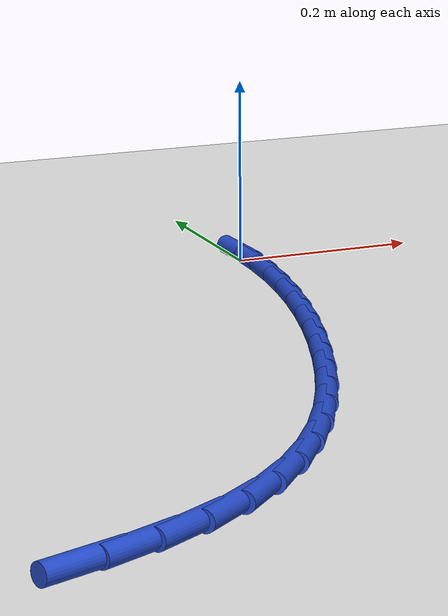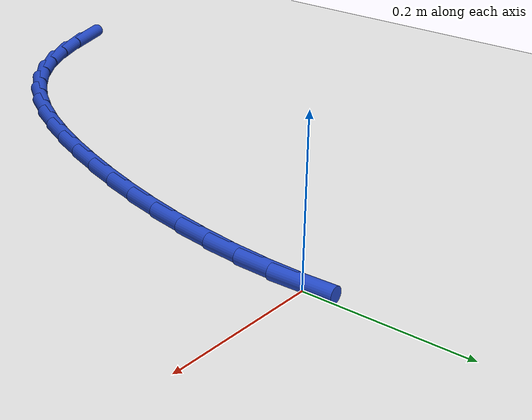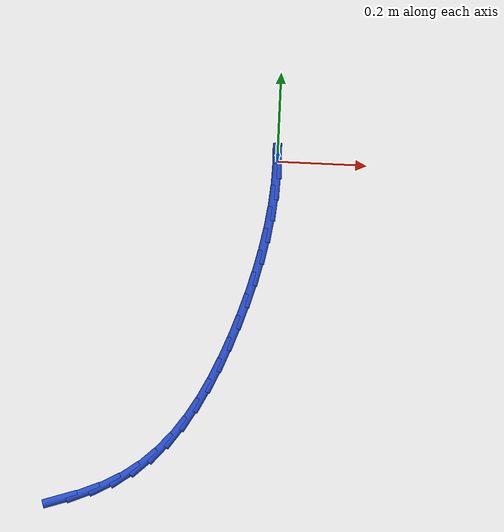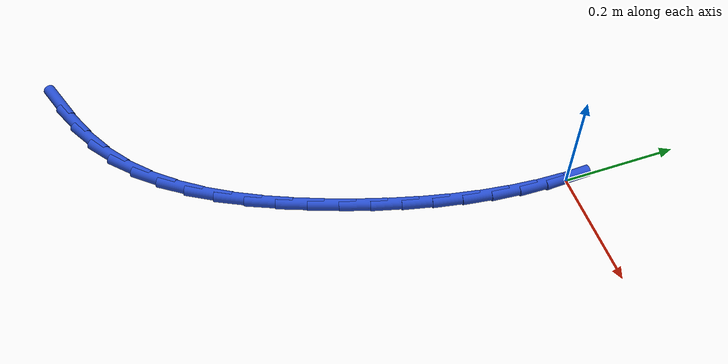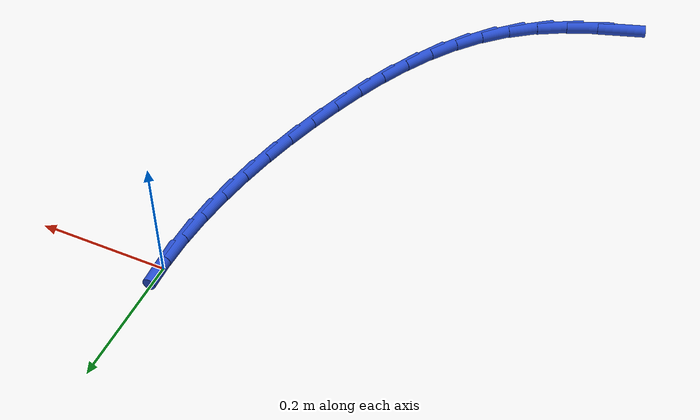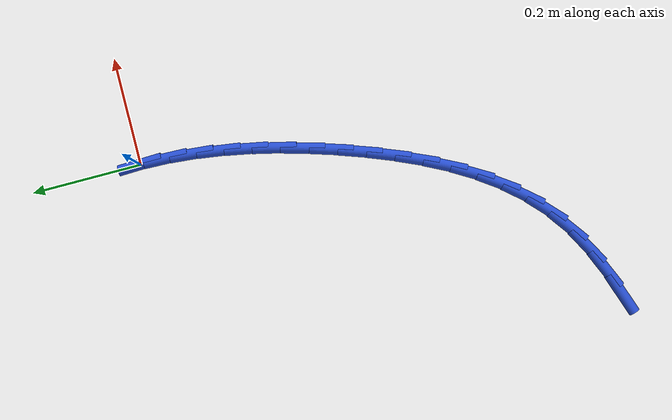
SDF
<sdf version="1.6">
 <world name="default">
  <model name="ground_plane">
   <static>1</static>
   <link name="link">
    <collision name="collision">
     <geometry><plane><normal>0 0 1</normal><size>100 100</size></plane></geometry>
     <surface><friction><ode><mu>100</mu><mu2>50</mu2></ode></friction></surface>
    </collision>
    <visual name="visual">
     <cast_shadows>0</cast_shadows>
     <geometry><plane><normal>0 0 1</normal><size>100 100</size></plane></geometry>
     <material>
      <script><uri>file://media/materials/scripts/gazebo.material</uri><name>Gazebo/WhiteGlow</name></script>
     </material>
    </visual>
   </link>
  </model>
  <model name="line">
   <link name="link_141">
    <pose>-0.4426247001294047 -0.7738872332311045 0.01 0 1.57 0.32192824485629296</pose>
    <collision name="collision">
     <geometry><cylinder><radius>0.01</radius><length>0.08</length></cylinder></geometry>
    </collision>
    <visual name="visual">
     <material>
      <script><name>Gazebo/Blue</name><uri>file://media/materials/scripts/gazebo.material</uri></script>
     </material>
     <geometry><cylinder><radius>0.01</radius><length>0.08</length></cylinder></geometry>
    </visual>
   </link>
   <link name="link_142">
    <pose>-0.3928868163310117 -0.7572981181082722 0.01 0 1.57 0.40179464631053075</pose>
    <collision name="collision">
     <geometry><cylinder><radius>0.01</radius><length>0.08</length></cylinder></geometry>
    </collision>
    <visual name="visual">
     <material>
      <script><name>Gazebo/Blue</name><uri>file://media/materials/scripts/gazebo.material</uri></script>
     </material>
     <geometry><cylinder><radius>0.01</radius><length>0.08</length></cylinder></geometry>
    </visual>
   </link>
   <link name="link_143">
    <pose>-0.3458949287125669 -0.7373307822615341 0.01 0 1.57 0.5045592579712612</pose>
    <collision name="collision">
     <geometry><cylinder><radius>0.01</radius><length>0.08</length></cylinder></geometry>
    </collision>
    <visual name="visual">
     <material>
      <script><name>Gazebo/Blue</name><uri>file://media/materials/scripts/gazebo.material</uri></script>
     </material>
     <geometry><cylinder><radius>0.01</radius><length>0.08</length></cylinder></geometry>
    </visual>
   </link>
   <link name="link_144">
    <pose>-0.3023133002735761 -0.7132633829655775 0.01 0 1.57 0.6288284674758986</pose>
    <collision name="collision">
     <geometry><cylinder><radius>0.01</radius><length>0.08</length></cylinder></geometry>
    </collision>
    <visual name="visual">
     <material>
      <script><name>Gazebo/Blue</name><uri>file://media/materials/scripts/gazebo.material</uri></script>
     </material>
     <geometry><cylinder><radius>0.01</radius><length>0.08</length></cylinder></geometry>
    </visual>
   </link>
   <link name="link_145">
    <pose>-0.262729962088951 -0.6844735530067708 0.01 0 1.57 0.7522257538743221</pose>
    <collision name="collision">
     <geometry><cylinder><radius>0.01</radius><length>0.08</length></cylinder></geometry>
    </collision>
    <visual name="visual">
     <material>
      <script><name>Gazebo/Blue</name><uri>file://media/materials/scripts/gazebo.material</uri></script>
     </material>
     <geometry><cylinder><radius>0.01</radius><length>0.08</length></cylinder></geometry>
    </visual>
   </link>
   <link name="link_146">
    <pose>-0.2271145000204129 -0.6511459381697386 0.01 0 1.57 0.8619168220842297</pose>
    <collision name="collision">
     <geometry><cylinder><radius>0.01</radius><length>0.08</length></cylinder></geometry>
    </collision>
    <visual name="visual">
     <material>
      <script><name>Gazebo/Blue</name><uri>file://media/materials/scripts/gazebo.material</uri></script>
     </material>
     <geometry><cylinder><radius>0.01</radius><length>0.08</length></cylinder></geometry>
    </visual>
   </link>
   <link name="link_147">
    <pose>-0.19513620465216078 -0.6138570414111062 0.01 0 1.57 0.9567107983403199</pose>
    <collision name="collision">
     <geometry><cylinder><radius>0.01</radius><length>0.08</length></cylinder></geometry>
    </collision>
    <visual name="visual">
     <material>
      <script><name>Gazebo/Blue</name><uri>file://media/materials/scripts/gazebo.material</uri></script>
     </material>
     <geometry><cylinder><radius>0.01</radius><length>0.08</length></cylinder></geometry>
    </visual>
   </link>
   <link name="link_148">
    <pose>-0.16646237805875763 -0.5731859605060639 0.01 0 1.57 1.0368703598337856</pose>
    <collision name="collision">
     <geometry><cylinder><radius>0.01</radius><length>0.08</length></cylinder></geometry>
    </collision>
    <visual name="visual">
     <material>
      <script><name>Gazebo/Blue</name><uri>file://media/materials/scripts/gazebo.material</uri></script>
     </material>
     <geometry><cylinder><radius>0.01</radius><length>0.08</length></cylinder></geometry>
    </visual>
   </link>
   <link name="link_149">
    <pose>-0.14076032231476712 -0.5297117932298032 0.01 0 1.57 1.1034110765898193</pose>
    <collision name="collision">
     <geometry><cylinder><radius>0.01</radius><length>0.08</length></cylinder></geometry>
    </collision>
    <visual name="visual">
     <material>
      <script><name>Gazebo/Blue</name><uri>file://media/materials/scripts/gazebo.material</uri></script>
     </material>
     <geometry><cylinder><radius>0.01</radius><length>0.08</length></cylinder></geometry>
    </visual>
   </link>
   <link name="link_150">
    <pose>-0.11769733949475286 -0.484013637357515 0.01 0 1.57 1.1576056350301476</pose>
    <collision name="collision">
     <geometry><cylinder><radius>0.01</radius><length>0.08</length></cylinder></geometry>
    </collision>
    <visual name="visual">
     <material>
      <script><name>Gazebo/Blue</name><uri>file://media/materials/scripts/gazebo.material</uri></script>
     </material>
     <geometry><cylinder><radius>0.01</radius><length>0.08</length></cylinder></geometry>
    </visual>
   </link>
   <link name="link_151">
    <pose>-0.09694073167327795 -0.4366705906643897 0.01 0 1.57 1.2006719846868579</pose>
    <collision name="collision">
     <geometry><cylinder><radius>0.01</radius><length>0.08</length></cylinder></geometry>
    </collision>
    <visual name="visual">
     <material>
      <script><name>Gazebo/Blue</name><uri>file://media/materials/scripts/gazebo.material</uri></script>
     </material>
     <geometry><cylinder><radius>0.01</radius><length>0.08</length></cylinder></geometry>
    </visual>
   </link>
   <link name="link_152">
    <pose>-0.07815780092490689 -0.38826175092562015 0.01 0 1.57 1.2349491931955794</pose>
    <collision name="collision">
     <geometry><cylinder><radius>0.01</radius><length>0.08</length></cylinder></geometry>
    </collision>
    <visual name="visual">
     <material>
      <script><name>Gazebo/Blue</name><uri>file://media/materials/scripts/gazebo.material</uri></script>
     </material>
     <geometry><cylinder><radius>0.01</radius><length>0.08</length></cylinder></geometry>
    </visual>
   </link>
   <link name="link_153">
    <pose>-0.06107389783545782 -0.33932072255488804 0.01 0 1.57 1.2686993463243117</pose>
    <collision name="collision">
     <geometry><cylinder><radius>0.01</radius><length>0.08</length></cylinder></geometry>
    </collision>
    <visual name="visual">
     <material>
      <script><name>Gazebo/Blue</name><uri>file://media/materials/scripts/gazebo.material</uri></script>
     </material>
     <geometry><cylinder><radius>0.01</radius><length>0.08</length></cylinder></geometry>
    </visual>
   </link>
   <link name="link_154">
    <pose>-0.045742454683270206 -0.2901239881427742 0.01 0 1.57 1.3050322755823154</pose>
    <collision name="collision">
     <geometry><cylinder><radius>0.01</radius><length>0.08</length></cylinder></geometry>
    </collision>
    <visual name="visual">
     <material>
      <script><name>Gazebo/Blue</name><uri>file://media/materials/scripts/gazebo.material</uri></script>
     </material>
     <geometry><cylinder><radius>0.01</radius><length>0.08</length></cylinder></geometry>
    </visual>
   </link>
   <link name="link_155">
    <pose>-0.032332045936711754 -0.24085779187128337 0.01 0 1.57 1.34441323168795</pose>
    <collision name="collision">
     <geometry><cylinder><radius>0.01</radius><length>0.08</length></cylinder></geometry>
    </collision>
    <visual name="visual">
     <material>
      <script><name>Gazebo/Blue</name><uri>file://media/materials/scripts/gazebo.material</uri></script>
     </material>
     <geometry><cylinder><radius>0.01</radius><length>0.08</length></cylinder></geometry>
    </visual>
   </link>
   <link name="link_156">
    <pose>-0.021011371073257776 -0.19170827995118117 0.01 0 1.57 1.3873577547466658</pose>
    <collision name="collision">
     <geometry><cylinder><radius>0.01</radius><length>0.08</length></cylinder></geometry>
    </collision>
    <visual name="visual">
     <material>
      <script><name>Gazebo/Blue</name><uri>file://media/materials/scripts/gazebo.material</uri></script>
     </material>
     <geometry><cylinder><radius>0.01</radius><length>0.08</length></cylinder></geometry>
    </visual>
   </link>
   <link name="link_157">
    <pose>-0.011949129570384217 -0.14286159859323586 0.01 0 1.57 1.4344388494284372</pose>
    <collision name="collision">
     <geometry><cylinder><radius>0.01</radius><length>0.08</length></cylinder></geometry>
    </collision>
    <visual name="visual">
     <material>
      <script><name>Gazebo/Blue</name><uri>file://media/materials/scripts/gazebo.material</uri></script>
     </material>
     <geometry><cylinder><radius>0.01</radius><length>0.08</length></cylinder></geometry>
    </visual>
   </link>
   <link name="link_158">
    <pose>-0.005314020905566382 -0.09450389400821291 0.01 0 1.57 1.4862863120459495</pose>
    <collision name="collision">
     <geometry><cylinder><radius>0.01</radius><length>0.08</length></cylinder></geometry>
    </collision>
    <visual name="visual">
     <material>
      <script><name>Gazebo/Blue</name><uri>file://media/materials/scripts/gazebo.material</uri></script>
     </material>
     <geometry><cylinder><radius>0.01</radius><length>0.08</length></cylinder></geometry>
    </visual>
   </link>
   <link name="link_159">
    <pose>-0.001274744556279803 -0.04682131240687889 0.01 0 1.57 1.5435773176160619</pose>
    <collision name="collision">
     <geometry><cylinder><radius>0.01</radius><length>0.08</length></cylinder></geometry>
    </collision>
    <visual name="visual">
     <material>
      <script><name>Gazebo/Blue</name><uri>file://media/materials/scripts/gazebo.material</uri></script>
     </material>
     <geometry><cylinder><radius>0.01</radius><length>0.08</length></cylinder></geometry>
    </visual>
   </link>
   <link name="link_160">
    <pose>-3.469446951953614e-18 -1.942890293094024e-16 0.01 0 1.57 -1.5345800188683063</pose>
    <collision name="collision">
     <geometry><cylinder><radius>0.01</radius><length>0.08</length></cylinder></geometry>
    </collision>
    <visual name="visual">
     <material>
      <script><name>Gazebo/Blue</name><uri>file://media/materials/scripts/gazebo.material</uri></script>
     </material>
     <geometry><cylinder><radius>0.01</radius><length>0.08</length></cylinder></geometry>
    </visual>
   </link>
  </model>
 </world>
</sdf>
